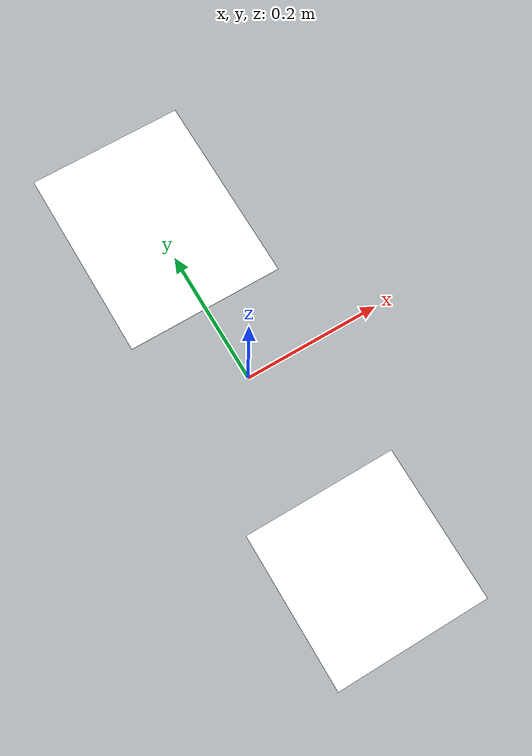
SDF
<?xml version='1.0'?>
<sdf version='1.5'>
  <model name='aruco_landing_markers'>
    <link name='base_link'>
    </link>
    <include>
      <name>aruco_array_v2</name>
      <uri>model://fiducials/aruco_array_v2</uri>
      <pose frame=''>0 0.259 0 0 0 0</pose>
    </include>
    <joint name="aruco_array_v2_joint" type="fixed">
      <child>aruco_array_v2::marker</child>
      <parent>base_link</parent>
    </joint>

    <include>
      <name>aruco_6x6_4_v2</name>
      <uri>model://fiducials/aruco_6x6_4_v2</uri>
      <pose frame=''>0 -0.289 0 0 0 0</pose>
    </include>
    <joint name="aruco_6x6_4_v2_joint" type="fixed">
      <child>aruco_6x6_4_v2::marker</child>
      <parent>base_link</parent>
    </joint>
  </model>
</sdf>

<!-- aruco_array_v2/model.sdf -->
<sdf version='1.5'>
  <model name='aruco_array_v2'>

    <link name='marker'>
      <pose frame=''>0 0 0 0 0 0</pose>
      <inertial>
        <pose>0 0 0 0 0 0</pose>
        <mass>0.015</mass>
        <inertia>
          <ixx>0</ixx>
          <ixy>0</ixy>
          <ixz>0</ixz>
          <iyy>0</iyy>
          <iyz>0</iyz>
          <izz>0</izz>
        </inertia>
      </inertial>
      <visual name='visual'>
        <geometry>
          <box>
            <size>0.2300 0.2896 1e-5</size>
          </box>
        </geometry>
        <material>
          <script>
            <uri>model://fiducials/aruco_array_v2/materials/scripts</uri>
            <uri>model://fiducials/aruco_array_v2/materials/textures</uri>
            <name>ArucoArrayV2/Marker</name>
          </script>
          <ambient>1 1 1 1</ambient>
          <diffuse>1 1 1 1</diffuse>
          <specular>0 0 0 1</specular>
          <emissive>1 1 1 0</emissive>
          <shader type='vertex'>
            <normal_map>__default__</normal_map>
          </shader>
        </material>
        <pose frame=''>0 0 0 0 -0 0</pose>
        <cast_shadows>1</cast_shadows>
        <transparency>0</transparency>
      </visual>
      <collision name='collision'>
        <laser_retro>0</laser_retro>
        <max_contacts>10</max_contacts>
        <pose frame=''>0 0 0 0 -0 0</pose>
        <geometry>
          <box>
            <size>0.2300 0.2896 1e-05</size>
          </box>
        </geometry>
      </collision>
    </link>

    <link name='marker_pad'>
      <pose frame='marker'>0 0 -1e-3 0 -0 0</pose>
      <visual name='visual'>
        <geometry>
          <box>
            <size>0.2300 0.2896 1e-5</size>
          </box>
        </geometry>
        <material>
          <lighting>1</lighting>
          <script>
            <uri>file://media/materials/scripts/gazebo.material</uri>
            <name>Gazebo/White</name>
          </script>
          <ambient>0.3 0.3 0.3 1</ambient>
          <diffuse>0.7 0.7 0.7 1</diffuse>
          <specular>0.01 0.01 0.01 1</specular>
          <emissive>1 1 1 0</emissive>
          <shader type='vertex'>
            <normal_map>__default__</normal_map>
          </shader>
        </material>
        <cast_shadows>1</cast_shadows>
        <transparency>0</transparency>
      </visual>
      <collision name='collision'>
        <laser_retro>0</laser_retro>
        <max_contacts>10</max_contacts>
        <pose frame=''>0 0 0 0 -0 0</pose>
        <geometry>
          <box>
            <size>0.2300 0.2896 1e-5</size>
          </box>
        </geometry>
      </collision>
    </link>

    <joint name='marker_JOINT_marker_pad' type='fixed'>
      <parent>marker</parent>
      <child>marker_pad</child>
      <pose frame=''>0 0 0 0 -0 0</pose>
      <axis>
        <xyz>0 0 1</xyz>
        <limit>
          <upper>0</upper>
          <lower>0</lower>
        </limit>
      </axis>
    </joint>

    <allow_auto_disable>1</allow_auto_disable>

  </model>
</sdf>

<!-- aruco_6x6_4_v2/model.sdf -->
<sdf version='1.5'>
  <model name='aruco_6x6_4_v2'>

    <link name='marker'>
      <pose frame=''>0 0 0 0 0 0</pose>
      <inertial>
        <pose>0 0 0 0 0 0</pose>
        <mass>0.015</mass>
        <inertia>
          <ixx>0</ixx>
          <ixy>0</ixy>
          <ixz>0</ixz>
          <iyy>0</iyy>
          <iyz>0</iyz>
          <izz>0</izz>
        </inertia>
      </inertial>
      <visual name='visual'>
        <geometry>
          <box>
            <size>0.2200 0.2200 1e-5</size>
          </box>
        </geometry>
        <material>
          <script>
            <uri>model://fiducials/aruco_6x6_4/materials/scripts</uri>
            <uri>model://fiducials/aruco_6x6_4/materials/textures</uri>
            <name>ArucoMarker4/Marker</name>
          </script>
          <ambient>1 1 1 1</ambient>
          <diffuse>1 1 1 1</diffuse>
          <specular>0 0 0 1</specular>
          <emissive>1 1 1 0</emissive>
          <shader type='vertex'>
            <normal_map>__default__</normal_map>
          </shader>
        </material>
        <pose frame=''>0 0 0 0 -0 0</pose>
        <cast_shadows>1</cast_shadows>
        <transparency>0</transparency>
      </visual>
      <collision name='collision'>
        <laser_retro>0</laser_retro>
        <max_contacts>10</max_contacts>
        <pose frame=''>0 0 0 0 -0 0</pose>
        <geometry>
          <box>
            <size>0.2200 0.2200 1e-05</size>
          </box>
        </geometry>
      </collision>
    </link>

    <link name='marker_pad'>
      <pose frame='marker'>0 0 -1e-3 0 -0 0</pose>
      <visual name='visual'>
        <geometry>
          <box>
            <size>0.2200 0.2200 1e-5</size>
          </box>
        </geometry>
        <material>
          <lighting>1</lighting>
          <script>
            <uri>file://media/materials/scripts/gazebo.material</uri>
            <name>Gazebo/White</name>
          </script>
          <ambient>0.3 0.3 0.3 1</ambient>
          <diffuse>0.7 0.7 0.7 1</diffuse>
          <specular>0.01 0.01 0.01 1</specular>
          <emissive>1 1 1 0</emissive>
          <shader type='vertex'>
            <normal_map>__default__</normal_map>
          </shader>
        </material>
        <cast_shadows>1</cast_shadows>
        <transparency>0</transparency>
      </visual>
      <collision name='collision'>
        <laser_retro>0</laser_retro>
        <max_contacts>10</max_contacts>
        <pose frame=''>0 0 0 0 -0 0</pose>
        <geometry>
          <box>
            <size>0.2200 0.2200 1e-5</size>
          </box>
        </geometry>
      </collision>
    </link>

    <joint name='marker_JOINT_marker_pad' type='fixed'>
      <parent>marker</parent>
      <child>marker_pad</child>
      <pose frame=''>0 0 0 0 -0 0</pose>
      <axis>
        <xyz>0 0 1</xyz>
        <limit>
          <upper>0</upper>
          <lower>0</lower>
        </limit>
      </axis>
    </joint>

    <allow_auto_disable>1</allow_auto_disable>

  </model>
</sdf>
